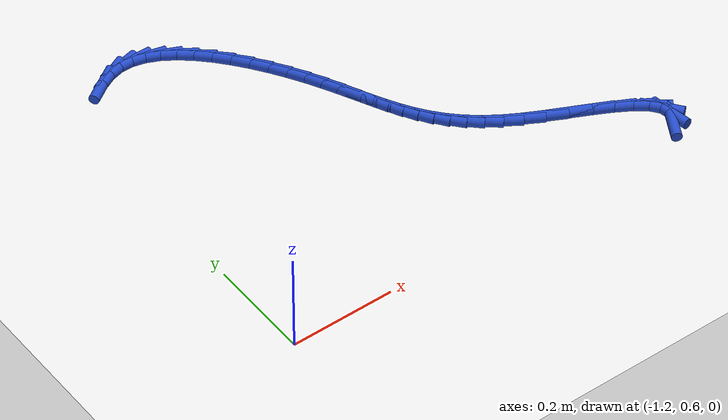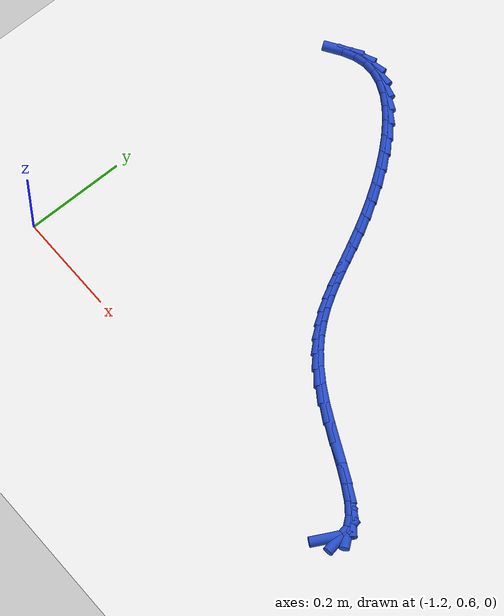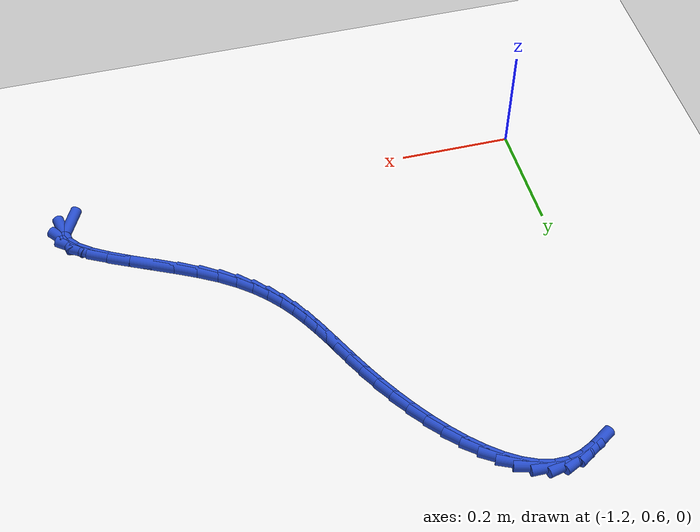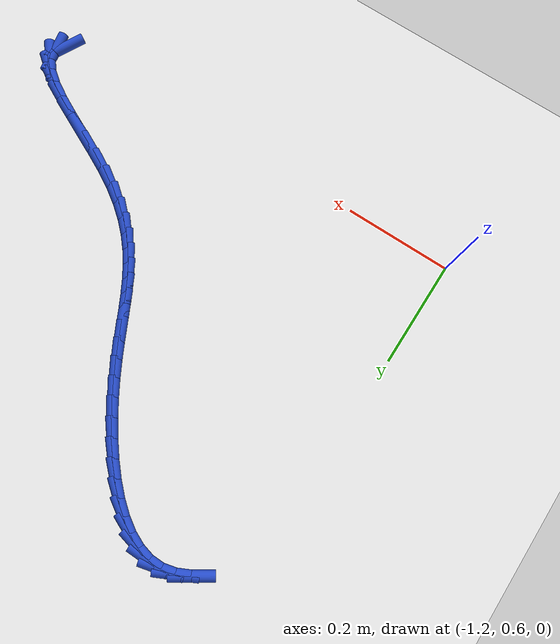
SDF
<sdf version="1.6">
 <world name="default">
  <model name="ground_plane">
   <static>1</static>
   <link name="link">
    <collision name="collision">
     <geometry><plane><normal>0 0 1</normal><size>100 100</size></plane></geometry>
     <surface><friction><ode><mu>100</mu><mu2>50</mu2></ode></friction></surface>
    </collision>
    <visual name="visual">
     <cast_shadows>0</cast_shadows>
     <geometry><plane><normal>0 0 1</normal><size>100 100</size></plane></geometry>
     <material>
      <script><uri>file://media/materials/scripts/gazebo.material</uri><name>Gazebo/WhiteGlow</name></script>
     </material>
    </visual>
   </link>
  </model>
  <model name="line">
   <link name="link_28">
    <pose>-0.37663426658869226 0.6243620921152869 0.01 0 1.57 1.0853191289259294</pose>
    <collision name="collision">
     <geometry><cylinder><radius>0.01</radius><length>0.08</length></cylinder></geometry>
    </collision>
    <visual name="visual">
     <material>
      <script><name>Gazebo/Blue</name><uri>file://media/materials/scripts/gazebo.material</uri></script>
     </material>
     <geometry><cylinder><radius>0.01</radius><length>0.08</length></cylinder></geometry>
    </visual>
   </link>
   <link name="link_29">
    <pose>-0.3671003697334355 0.6424326602242847 0.01 0 1.57 -1.399066620463761</pose>
    <collision name="collision">
     <geometry><cylinder><radius>0.01</radius><length>0.08</length></cylinder></geometry>
    </collision>
    <visual name="visual">
     <material>
      <script><name>Gazebo/Blue</name><uri>file://media/materials/scripts/gazebo.material</uri></script>
     </material>
     <geometry><cylinder><radius>0.01</radius><length>0.08</length></cylinder></geometry>
    </visual>
   </link>
   <link name="link_30">
    <pose>-0.37017064761934426 0.6601351095823516 0.01 0 1.57 -0.9051813185605434</pose>
    <collision name="collision">
     <geometry><cylinder><radius>0.01</radius><length>0.08</length></cylinder></geometry>
    </collision>
    <visual name="visual">
     <material>
      <script><name>Gazebo/Blue</name><uri>file://media/materials/scripts/gazebo.material</uri></script>
     </material>
     <geometry><cylinder><radius>0.01</radius><length>0.08</length></cylinder></geometry>
    </visual>
   </link>
   <link name="link_31">
    <pose>-0.383872027789305 0.6775859507138687 0.01 0 1.57 -0.6589523620478688</pose>
    <collision name="collision">
     <geometry><cylinder><radius>0.01</radius><length>0.08</length></cylinder></geometry>
    </collision>
    <visual name="visual">
     <material>
      <script><name>Gazebo/Blue</name><uri>file://media/materials/scripts/gazebo.material</uri></script>
     </material>
     <geometry><cylinder><radius>0.01</radius><length>0.08</length></cylinder></geometry>
    </visual>
   </link>
   <link name="link_32">
    <pose>-0.4062314366739607 0.6949016941863856 0.01 0 1.57 -0.5371355620843321</pose>
    <collision name="collision">
     <geometry><cylinder><radius>0.01</radius><length>0.08</length></cylinder></geometry>
    </collision>
    <visual name="visual">
     <material>
      <script><name>Gazebo/Blue</name><uri>file://media/materials/scripts/gazebo.material</uri></script>
     </material>
     <geometry><cylinder><radius>0.01</radius><length>0.08</length></cylinder></geometry>
    </visual>
   </link>
   <link name="link_33">
    <pose>-0.43527580070395433 0.7121988505674522 0.01 0 1.57 -0.4758239437813199</pose>
    <collision name="collision">
     <geometry><cylinder><radius>0.01</radius><length>0.08</length></cylinder></geometry>
    </collision>
    <visual name="visual">
     <material>
      <script><name>Gazebo/Blue</name><uri>file://media/materials/scripts/gazebo.material</uri></script>
     </material>
     <geometry><cylinder><radius>0.01</radius><length>0.08</length></cylinder></geometry>
    </visual>
   </link>
   <link name="link_34">
    <pose>-0.4690320463099283 0.7295939304246174 0.01 0 1.57 -0.44956431116818246</pose>
    <collision name="collision">
     <geometry><cylinder><radius>0.01</radius><length>0.08</length></cylinder></geometry>
    </collision>
    <visual name="visual">
     <material>
      <script><name>Gazebo/Blue</name><uri>file://media/materials/scripts/gazebo.material</uri></script>
     </material>
     <geometry><cylinder><radius>0.01</radius><length>0.08</length></cylinder></geometry>
    </visual>
   </link>
   <link name="link_35">
    <pose>-0.505527099922526 0.747203444325432 0.01 0 1.57 -0.44872506694509867</pose>
    <collision name="collision">
     <geometry><cylinder><radius>0.01</radius><length>0.08</length></cylinder></geometry>
    </collision>
    <visual name="visual">
     <material>
      <script><name>Gazebo/Blue</name><uri>file://media/materials/scripts/gazebo.material</uri></script>
     </material>
     <geometry><cylinder><radius>0.01</radius><length>0.08</length></cylinder></geometry>
    </visual>
   </link>
   <link name="link_36">
    <pose>-0.5427878879723895 0.765143902837445 0.01 0 1.57 -0.4716299795766024</pose>
    <collision name="collision">
     <geometry><cylinder><radius>0.01</radius><length>0.08</length></cylinder></geometry>
    </collision>
    <visual name="visual">
     <material>
      <script><name>Gazebo/Blue</name><uri>file://media/materials/scripts/gazebo.material</uri></script>
     </material>
     <geometry><cylinder><radius>0.01</radius><length>0.08</length></cylinder></geometry>
    </visual>
   </link>
   <link name="link_37">
    <pose>-0.5788413368901628 0.7835318165282066 0.01 0 1.57 -0.5228354173593845</pose>
    <collision name="collision">
     <geometry><cylinder><radius>0.01</radius><length>0.08</length></cylinder></geometry>
    </collision>
    <visual name="visual">
     <material>
      <script><name>Gazebo/Blue</name><uri>file://media/materials/scripts/gazebo.material</uri></script>
     </material>
     <geometry><cylinder><radius>0.01</radius><length>0.08</length></cylinder></geometry>
    </visual>
   </link>
   <link name="link_38">
    <pose>-0.6117242793091663 0.802483338303012 0.01 0 1.57 -0.6007688888644219</pose>
    <collision name="collision">
     <geometry><cylinder><radius>0.01</radius><length>0.08</length></cylinder></geometry>
    </collision>
    <visual name="visual">
     <material>
      <script><name>Gazebo/Blue</name><uri>file://media/materials/scripts/gazebo.material</uri></script>
     </material>
     <geometry><cylinder><radius>0.01</radius><length>0.08</length></cylinder></geometry>
    </visual>
   </link>
   <link name="link_39">
    <pose>-0.640326989284692 0.8220838076674509 0.01 0 1.57 -0.6872440952796394</pose>
    <collision name="collision">
     <geometry><cylinder><radius>0.01</radius><length>0.08</length></cylinder></geometry>
    </collision>
    <visual name="visual">
     <material>
      <script><name>Gazebo/Blue</name><uri>file://media/materials/scripts/gazebo.material</uri></script>
     </material>
     <geometry><cylinder><radius>0.01</radius><length>0.08</length></cylinder></geometry>
    </visual>
   </link>
   <link name="link_40">
    <pose>-0.6650380040360955 0.8423644695161051 0.01 0 1.57 -0.7765887038904971</pose>
    <collision name="collision">
     <geometry><cylinder><radius>0.01</radius><length>0.08</length></cylinder></geometry>
    </collision>
    <visual name="visual">
     <material>
      <script><name>Gazebo/Blue</name><uri>file://media/materials/scripts/gazebo.material</uri></script>
     </material>
     <geometry><cylinder><radius>0.01</radius><length>0.08</length></cylinder></geometry>
    </visual>
   </link>
   <link name="link_41">
    <pose>-0.6863976794744341 0.8633510873479857 0.01 0 1.57 -0.8639518343235093</pose>
    <collision name="collision">
     <geometry><cylinder><radius>0.01</radius><length>0.08</length></cylinder></geometry>
    </collision>
    <visual name="visual">
     <material>
      <script><name>Gazebo/Blue</name><uri>file://media/materials/scripts/gazebo.material</uri></script>
     </material>
     <geometry><cylinder><radius>0.01</radius><length>0.08</length></cylinder></geometry>
    </visual>
   </link>
   <link name="link_42">
    <pose>-0.7049463715107641 0.8850694246621034 0.01 0 1.57 -0.9439813212533213</pose>
    <collision name="collision">
     <geometry><cylinder><radius>0.01</radius><length>0.08</length></cylinder></geometry>
    </collision>
    <visual name="visual">
     <material>
      <script><name>Gazebo/Blue</name><uri>file://media/materials/scripts/gazebo.material</uri></script>
     </material>
     <geometry><cylinder><radius>0.01</radius><length>0.08</length></cylinder></geometry>
    </visual>
   </link>
   <link name="link_43">
    <pose>-0.7212244360561426 0.9075452449574696 0.01 0 1.57 -1.0118608214335638</pose>
    <collision name="collision">
     <geometry><cylinder><radius>0.01</radius><length>0.08</length></cylinder></geometry>
    </collision>
    <visual name="visual">
     <material>
      <script><name>Gazebo/Blue</name><uri>file://media/materials/scripts/gazebo.material</uri></script>
     </material>
     <geometry><cylinder><radius>0.01</radius><length>0.08</length></cylinder></geometry>
    </visual>
   </link>
   <link name="link_44">
    <pose>-0.7357722290216261 0.9308043117330957 0.01 0 1.57 -1.0641194428040195</pose>
    <collision name="collision">
     <geometry><cylinder><radius>0.01</radius><length>0.08</length></cylinder></geometry>
    </collision>
    <visual name="visual">
     <material>
      <script><name>Gazebo/Blue</name><uri>file://media/materials/scripts/gazebo.material</uri></script>
     </material>
     <geometry><cylinder><radius>0.01</radius><length>0.08</length></cylinder></geometry>
    </visual>
   </link>
   <link name="link_45">
    <pose>-0.749130106318271 0.9548723884879919 0.01 0 1.57 -1.0989301886839935</pose>
    <collision name="collision">
     <geometry><cylinder><radius>0.01</radius><length>0.08</length></cylinder></geometry>
    </collision>
    <visual name="visual">
     <material>
      <script><name>Gazebo/Blue</name><uri>file://media/materials/scripts/gazebo.material</uri></script>
     </material>
     <geometry><cylinder><radius>0.01</radius><length>0.08</length></cylinder></geometry>
    </visual>
   </link>
   <link name="link_46">
    <pose>-0.761838423857135 0.9797752387211703 0.01 0 1.57 -1.1159617761510223</pose>
    <collision name="collision">
     <geometry><cylinder><radius>0.01</radius><length>0.08</length></cylinder></geometry>
    </collision>
    <visual name="visual">
     <material>
      <script><name>Gazebo/Blue</name><uri>file://media/materials/scripts/gazebo.material</uri></script>
     </material>
     <geometry><cylinder><radius>0.01</radius><length>0.08</length></cylinder></geometry>
    </visual>
   </link>
   <link name="link_47">
    <pose>-0.7744375375492735 1.0055386259316412 0.01 0 1.57 -1.11603072998117</pose>
    <collision name="collision">
     <geometry><cylinder><radius>0.01</radius><length>0.08</length></cylinder></geometry>
    </collision>
    <visual name="visual">
     <material>
      <script><name>Gazebo/Blue</name><uri>file://media/materials/scripts/gazebo.material</uri></script>
     </material>
     <geometry><cylinder><radius>0.01</radius><length>0.08</length></cylinder></geometry>
    </visual>
   </link>
   <link name="link_48">
    <pose>-0.7874678033057438 1.032188313618416 0.01 0 1.57 -1.1007575710946635</pose>
    <collision name="collision">
     <geometry><cylinder><radius>0.01</radius><length>0.08</length></cylinder></geometry>
    </collision>
    <visual name="visual">
     <material>
      <script><name>Gazebo/Blue</name><uri>file://media/materials/scripts/gazebo.material</uri></script>
     </material>
     <geometry><cylinder><radius>0.01</radius><length>0.08</length></cylinder></geometry>
    </visual>
   </link>
   <link name="link_49">
    <pose>-0.8014695770376029 1.0597500652805056 0.01 0 1.57 -1.072435974765913</pose>
    <collision name="collision">
     <geometry><cylinder><radius>0.01</radius><length>0.08</length></cylinder></geometry>
    </collision>
    <visual name="visual">
     <material>
      <script><name>Gazebo/Blue</name><uri>file://media/materials/scripts/gazebo.material</uri></script>
     </material>
     <geometry><cylinder><radius>0.01</radius><length>0.08</length></cylinder></geometry>
    </visual>
   </link>
   <link name="link_50">
    <pose>-0.8169733712081978 1.088240500938961 0.01 0 1.57 -1.037093741614233</pose>
    <collision name="collision">
     <geometry><cylinder><radius>0.01</radius><length>0.08</length></cylinder></geometry>
    </collision>
    <visual name="visual">
     <material>
      <script><name>Gazebo/Blue</name><uri>file://media/materials/scripts/gazebo.material</uri></script>
     </material>
     <geometry><cylinder><radius>0.01</radius><length>0.08</length></cylinder></geometry>
    </visual>
   </link>
   <link name="link_51">
    <pose>-0.8341933649110843 1.1173824017810994 0.01 0 1.57 -0.9988732437890054</pose>
    <collision name="collision">
     <geometry><cylinder><radius>0.01</radius><length>0.08</length></cylinder></geometry>
    </collision>
    <visual name="visual">
     <material>
      <script><name>Gazebo/Blue</name><uri>file://media/materials/scripts/gazebo.material</uri></script>
     </material>
     <geometry><cylinder><radius>0.01</radius><length>0.08</length></cylinder></geometry>
    </visual>
   </link>
   <link name="link_52">
    <pose>-0.8529675277920749 1.146549091883731 0.01 0 1.57 -0.9562418841616519</pose>
    <collision name="collision">
     <geometry><cylinder><radius>0.01</radius><length>0.08</length></cylinder></geometry>
    </collision>
    <visual name="visual">
     <material>
      <script><name>Gazebo/Blue</name><uri>file://media/materials/scripts/gazebo.material</uri></script>
     </material>
     <geometry><cylinder><radius>0.01</radius><length>0.08</length></cylinder></geometry>
    </visual>
   </link>
   <link name="link_53">
    <pose>-0.8731118979140977 1.1750935233005042 0.01 0 1.57 -0.9070943729636897</pose>
    <collision name="collision">
     <geometry><cylinder><radius>0.01</radius><length>0.08</length></cylinder></geometry>
    </collision>
    <visual name="visual">
     <material>
      <script><name>Gazebo/Blue</name><uri>file://media/materials/scripts/gazebo.material</uri></script>
     </material>
     <geometry><cylinder><radius>0.01</radius><length>0.08</length></cylinder></geometry>
    </visual>
   </link>
   <link name="link_54">
    <pose>-0.8944425133400808 1.2023686480850653 0.01 0 1.57 -0.8487597751125688</pose>
    <collision name="collision">
     <geometry><cylinder><radius>0.01</radius><length>0.08</length></cylinder></geometry>
    </collision>
    <visual name="visual">
     <material>
      <script><name>Gazebo/Blue</name><uri>file://media/materials/scripts/gazebo.material</uri></script>
     </material>
     <geometry><cylinder><radius>0.01</radius><length>0.08</length></cylinder></geometry>
    </visual>
   </link>
   <link name="link_55">
    <pose>-0.9167754121329532 1.2277274182910622 0.01 0 1.57 -0.7776534005548527</pose>
    <collision name="collision">
     <geometry><cylinder><radius>0.01</radius><length>0.08</length></cylinder></geometry>
    </collision>
    <visual name="visual">
     <material>
      <script><name>Gazebo/Blue</name><uri>file://media/materials/scripts/gazebo.material</uri></script>
     </material>
     <geometry><cylinder><radius>0.01</radius><length>0.08</length></cylinder></geometry>
    </visual>
   </link>
   <link name="link_56">
    <pose>-0.9399266323556422 1.2505227859721428 0.01 0 1.57 -0.6888440345847494</pose>
    <collision name="collision">
     <geometry><cylinder><radius>0.01</radius><length>0.08</length></cylinder></geometry>
    </collision>
    <visual name="visual">
     <material>
      <script><name>Gazebo/Blue</name><uri>file://media/materials/scripts/gazebo.material</uri></script>
     </material>
     <geometry><cylinder><radius>0.01</radius><length>0.08</length></cylinder></geometry>
    </visual>
   </link>
   <link name="link_57">
    <pose>-0.963712212071077 1.2701077031819545 0.01 0 1.57 -0.5756216705690352</pose>
    <collision name="collision">
     <geometry><cylinder><radius>0.01</radius><length>0.08</length></cylinder></geometry>
    </collision>
    <visual name="visual">
     <material>
      <script><name>Gazebo/Blue</name><uri>file://media/materials/scripts/gazebo.material</uri></script>
     </material>
     <geometry><cylinder><radius>0.01</radius><length>0.08</length></cylinder></geometry>
    </visual>
   </link>
   <link name="link_58">
    <pose>-0.9879481893421848 1.2858351219741437 0.01 0 1.57 -0.4295126640115256</pose>
    <collision name="collision">
     <geometry><cylinder><radius>0.01</radius><length>0.08</length></cylinder></geometry>
    </collision>
    <visual name="visual">
     <material>
      <script><name>Gazebo/Blue</name><uri>file://media/materials/scripts/gazebo.material</uri></script>
     </material>
     <geometry><cylinder><radius>0.01</radius><length>0.08</length></cylinder></geometry>
    </visual>
   </link>
   <link name="link_59">
    <pose>-1.0124506022318949 1.2970579944023592 0.01 0 1.57 -0.24210756927522742</pose>
    <collision name="collision">
     <geometry><cylinder><radius>0.01</radius><length>0.08</length></cylinder></geometry>
    </collision>
    <visual name="visual">
     <material>
      <script><name>Gazebo/Blue</name><uri>file://media/materials/scripts/gazebo.material</uri></script>
     </material>
     <geometry><cylinder><radius>0.01</radius><length>0.08</length></cylinder></geometry>
    </visual>
   </link>
   <link name="link_60">
    <pose>-1.0370354888031346 1.303129272520248 0.01 0 1.57 -0.011135079761427911</pose>
    <collision name="collision">
     <geometry><cylinder><radius>0.01</radius><length>0.08</length></cylinder></geometry>
    </collision>
    <visual name="visual">
     <material>
      <script><name>Gazebo/Blue</name><uri>file://media/materials/scripts/gazebo.material</uri></script>
     </material>
     <geometry><cylinder><radius>0.01</radius><length>0.08</length></cylinder></geometry>
    </visual>
   </link>
   <link name="link_61">
    <pose>-1.0615188871188328 1.3034019083814574 0.01 0 1.57 0.2448142291321538</pose>
    <collision name="collision">
     <geometry><cylinder><radius>0.01</radius><length>0.08</length></cylinder></geometry>
    </collision>
    <visual name="visual">
     <material>
      <script><name>Gazebo/Blue</name><uri>file://media/materials/scripts/gazebo.material</uri></script>
     </material>
     <geometry><cylinder><radius>0.01</radius><length>0.08</length></cylinder></geometry>
    </visual>
   </link>
   <link name="link_62">
    <pose>-1.0857383292443321 1.2973512790820256 0.01 0 1.57 0.45145249089502715</pose>
    <collision name="collision">
     <geometry><cylinder><radius>0.01</radius><length>0.08</length></cylinder></geometry>
    </collision>
    <visual name="visual">
     <material>
      <script><name>Gazebo/Blue</name><uri>file://media/materials/scripts/gazebo.material</uri></script>
     </material>
     <geometry><cylinder><radius>0.01</radius><length>0.08</length></cylinder></geometry>
    </visual>
   </link>
   <link name="link_63">
    <pose>-1.109751798472275 1.2857084027255032 0.01 0 1.57 0.5813513070207619</pose>
    <collision name="collision">
     <geometry><cylinder><radius>0.01</radius><length>0.08</length></cylinder></geometry>
    </collision>
    <visual name="visual">
     <material>
      <script><name>Gazebo/Blue</name><uri>file://media/materials/scripts/gazebo.material</uri></script>
     </material>
     <geometry><cylinder><radius>0.01</radius><length>0.08</length></cylinder></geometry>
    </visual>
   </link>
  </model>
 </world>
</sdf>
